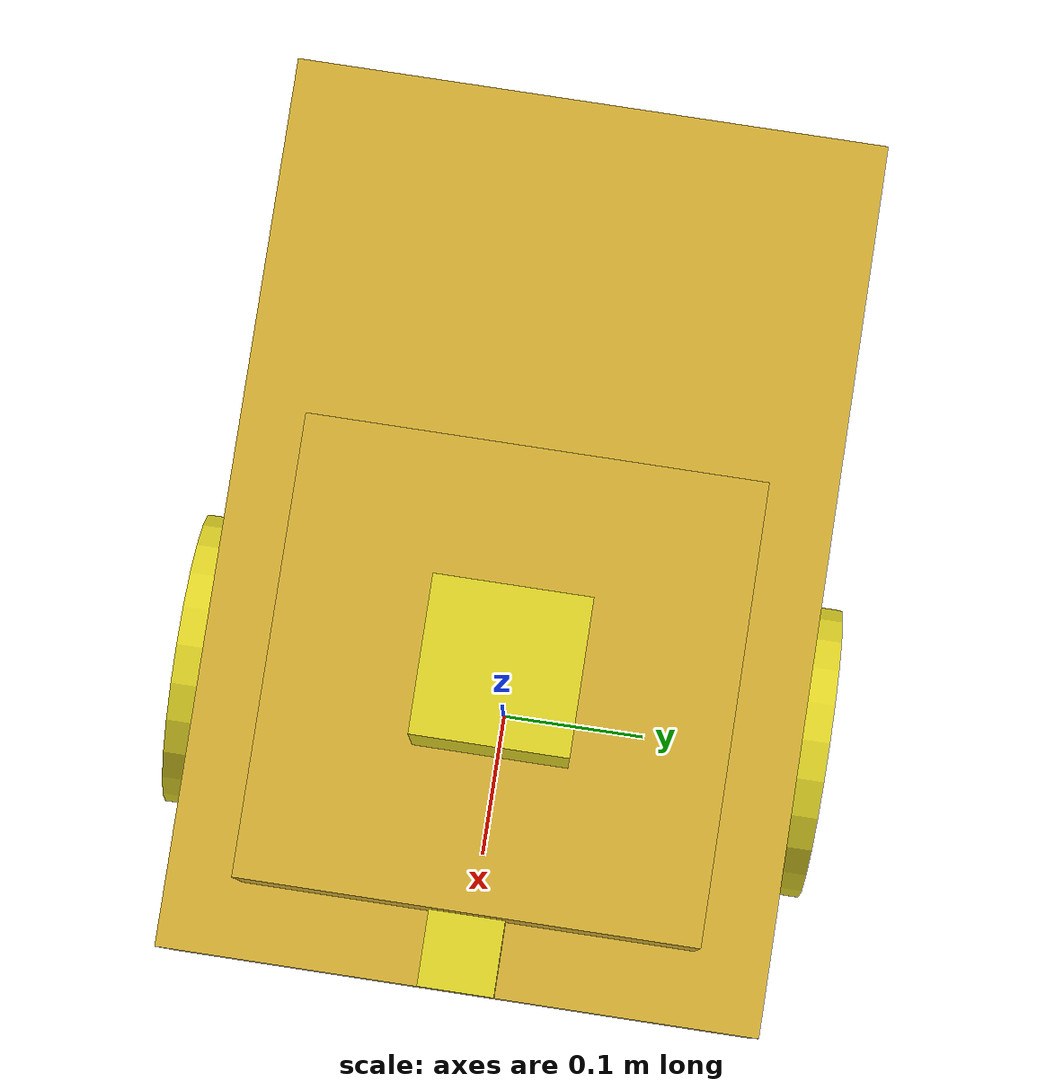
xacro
<?xml version="1.0"?>
<robot name="diffbot" xmlns:xacro="http://www.ros.org/wiki/xacro">
    <xacro:include filename="$(find diffbot_description)/urdf/properties.xacro"/>
    <xacro:include filename="$(find diffbot_description)/urdf/chassis.xacro"/>
    <xacro:include filename="$(find diffbot_description)/urdf/wheel.xacro"/>

    <xacro:chassis/>

    <xacro:wheel
        name="left"
        translation="0 ${WHEEL_SEPARATION/2} 0"
        rotation="0 0 0"
        parent="base_link"/>

    <xacro:wheel
        name="right"
        translation="0 ${-WHEEL_SEPARATION/2} 0"
        rotation="0 0 0"
        parent="base_link"/>

    <gazebo>
        <plugin name="differential_drive_controller" filename="libgazebo_ros_diff_drive.so">

            <!-- Plugin update rate in Hz -->
            <updateRate>100</updateRate>

            <!-- Name of left joint, defaults to `left_joint` -->
            <leftJoint>left_wheel_joint</leftJoint>

            <!-- Name of right joint, defaults to `right_joint` -->
            <rightJoint>right_wheel_joint</rightJoint>

            <!-- The distance from the center of one wheel to the other, in meters, defaults to 0.34 m -->
            <wheelSeparation>${WHEEL_SEPARATION}</wheelSeparation>

            <!-- Diameter of the wheels, in meters, defaults to 0.15 m -->
            <wheelDiameter>${WHEEL_RADIUS*2}</wheelDiameter>

            <!-- Wheel acceleration, in rad/s^2, defaults to 0.0 rad/s^2 -->
            <wheelAcceleration>1.0</wheelAcceleration>

            <!-- Maximum torque which the wheels can produce, in Nm, defaults to 5 Nm -->
            <wheelTorque>20</wheelTorque>

            <!-- Topic to receive geometry_msgs/Twist message commands, defaults to `cmd_vel` -->
            <commandTopic>cmd_vel</commandTopic>

            <!-- Topic to publish nav_msgs/Odometry messages, defaults to `odom` -->
            <odometryTopic>odom</odometryTopic>

            <!-- Odometry frame, defaults to `odom` -->
            <odometryFrame>odom</odometryFrame>

            <!-- Robot frame to calculate odometry from, defaults to `base_footprint` -->
            <robotBaseFrame>base_footprint</robotBaseFrame>

            <!-- Odometry source, 0 for ENCODER, 1 for WORLD, defaults to WORLD -->
            <odometrySource>1</odometrySource>

            <!-- Set to true to publish transforms for the wheel links, defaults to false -->
            <publishWheelTF>false</publishWheelTF>

            <!-- Set to true to publish transforms for the odometry, defaults to true -->
            <publishOdom>true</publishOdom>

            <!-- Set to true to publish sensor_msgs/JointState on /joint_states for the wheel joints, defaults to false -->
            <publishWheelJointState>false</publishWheelJointState>

            <!-- Set to true to swap right and left wheels, defaults to true -->
            <legacyMode>false</legacyMode>
        </plugin>
    </gazebo>

</robot>

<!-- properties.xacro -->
<robot name="diffbot" xmlns:xacro="http://www.ros.org/wiki/xacro">

    <xacro:property name="PI" value="3.14159265359"/>
    <xacro:property name="WHEEL_RADIUS" value="0.1"/>

    <!--Joint Properties-->
    <xacro:property name="U_MAX" value="10"/>
    <xacro:property name="V_MAX" value="20"/>
    <xacro:property name="WHEEL_JOINT_DAMP" value="0.3"/>
    <xacro:property name="WHEEL_SEPARATION" value="0.42"/>

    <!--Inertial Properties-->
    <xacro:property name="CHASSIS_COM" value="-0.1 0 -0.05"/>
    <xacro:property name="CHASSIS_M" value="3"/>
    <xacro:property name="CHASSIS_ixx" value="0.009607873"/>
    <xacro:property name="CHASSIS_ixy" value="0.00018491"/>
    <xacro:property name="CHASSIS_ixz" value="0.000352663"/>
    <xacro:property name="CHASSIS_iyy" value="0.010242986"/>
    <xacro:property name="CHASSIS_iyz" value="0.00027809"/>
    <xacro:property name="CHASSIS_izz" value="0.009654254"/>

    <xacro:property name="WHEEL_COM" value="0 0 0"/>
    <xacro:property name="WHEEL_M" value="0.21"/>
    <xacro:property name="WHEEL_ixx" value="0.00012052"/>
    <xacro:property name="WHEEL_ixy" value="0.0"/>
    <xacro:property name="WHEEL_ixz" value="0.0"/>
    <xacro:property name="WHEEL_iyy" value="0.0029397"/>
    <xacro:property name="WHEEL_iyz" value="0.0"/>
    <xacro:property name="WHEEL_izz" value="0.00012052"/>

    <!--Camera Properties-->
    <xacro:property name="camera_link" value="0.05" /> <!-- Size of square 'camera' box -->

</robot>

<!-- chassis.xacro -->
<robot name="diffbot_chassis" xmlns:xacro="http://www.ros.org/wiki/xacro">
    <xacro:include filename="$(find diffbot_description)/urdf/properties.xacro"/>
    <xacro:macro name="chassis" params="">
        <link name="base_footprint"/>

        <joint name="base_footprint_to_base_link" type="fixed">
            <parent link="base_footprint"/>
            <child link="base_link"/>
            <origin rpy="0 0 0" xyz="0 0 0.1"/>
        </joint>

        <link name="base_link">
            <inertial>
                <origin rpy="0 0 0" xyz="${CHASSIS_COM}"/>
                <mass value="${CHASSIS_M}"/>
                <inertia ixx="${CHASSIS_ixx}" ixy="${CHASSIS_ixy}" ixz="${CHASSIS_ixz}"
                    iyy="${CHASSIS_iyy}" iyz="${CHASSIS_iyz}" izz="${CHASSIS_izz}"/>
            </inertial>
            <visual>
                <origin rpy="0 0 0" xyz="-0.1 0 0.05"/>
                <geometry>
                    <box size="0.6 ${WHEEL_SEPARATION-0.02} 0.15"/>
                </geometry>
            </visual>
            <collision>
                <origin rpy="0 0 0" xyz="-0.1 0 0.05"/>
                <geometry>
                    <box size="0.6 ${WHEEL_SEPARATION-0.02} 0.15"/>
                </geometry>
            </collision>
        </link>

        <joint name="base_link_to_upper" type="fixed">
            <parent link="base_link"/>
            <child link="upper"/>
            <origin rpy="0 0 0" xyz="0 0 0.175"/>
        </joint>

        <link name="upper">
            <visual>
                <origin rpy="0 0 0" xyz="0 0 0"/>
                <geometry>
                    <box size="0.3 0.3 0.10"/>
                </geometry>
            </visual>
            <collision>
                <origin rpy="0 0 0" xyz="0 0 0"/>
                <geometry>
                    <box size="0.3 0.3 0.10"/>
                </geometry>
            </collision>
        </link>

        <joint name="base_link_to_caster" type="fixed">
            <parent link="base_link"/>
            <child link="caster"/>
            <origin rpy="0 0 0" xyz="-0.3 0 -0.05"/>
        </joint>

        <link name="caster">
            <visual>
                <origin rpy="0 0 0" xyz="0 0 0"/>
                <geometry>
                    <sphere radius="0.05"/>
                </geometry>
            </visual>
            <collision>
                <origin rpy="0 0 0" xyz="0 0 0"/>
                <geometry>
                    <sphere radius="0.05"/>
                </geometry>
            </collision>
        </link>

        <joint name="camera_joint" type="fixed">
            <axis xyz="0 1 0" />
            <origin xyz="0.175 0 0.15" rpy="0 0 0"/>
            <parent link="base_link"/>
            <child link="camera_link"/>
        </joint>

        <!-- Camera -->
        <link name="camera_link">
            <collision>
                <origin xyz="0 0 0" rpy="0 0 0"/>
                <geometry>
                    <box size="${camera_link} ${camera_link} ${camera_link}"/>
                </geometry>
            </collision>

            <visual>
                <origin xyz="0 0 0" rpy="0 0 0"/>
                <geometry>
                    <box size="${camera_link} ${camera_link} ${camera_link}"/>
                </geometry>
            </visual>

            <inertial>
                <mass value="1e-5" />
                <origin xyz="0 0 0" rpy="0 0 0"/>
                <inertia ixx="1e-6" ixy="0" ixz="0" iyy="1e-6" iyz="0" izz="1e-6" />
            </inertial>
        </link>

        <!-- camera -->
        <gazebo reference="camera_link">
            <sensor type="camera" name="camera1">
            <update_rate>30.0</update_rate>
            <camera name="head">
                <horizontal_fov>1.3962634</horizontal_fov>
                <image>
                <width>800</width>
                <height>800</height>
                <format>R8G8B8</format>
                </image>
                <clip>
                <near>0.02</near>
                <far>300</far>
                </clip>
                <noise>
                <type>gaussian</type>
                <mean>0.0</mean>
                <stddev>0.007</stddev>
                </noise>
            </camera>
            <plugin name="camera_controller" filename="libgazebo_ros_camera.so">
                <alwaysOn>true</alwaysOn>
                <updateRate>0.0</updateRate>
                <cameraName>rrbot/camera1</cameraName>
                <imageTopicName>image_raw</imageTopicName>
                <cameraInfoTopicName>camera_info</cameraInfoTopicName>
                <frameName>camera_link</frameName>
                <hackBaseline>0.07</hackBaseline>
                <distortionK1>0.0</distortionK1>
                <distortionK2>0.0</distortionK2>
                <distortionK3>0.0</distortionK3>
                <distortionT1>0.0</distortionT1>
                <distortionT2>0.0</distortionT2>
            </plugin>
            </sensor>
        </gazebo>

        <joint name="hokuyo_joint" type="fixed">
            <axis xyz="0 1 0" />
            <origin xyz="0 0 0.1" rpy="0 0 0"/>
            <parent link="upper"/>
            <child link="hokuyo_link"/>
        </joint>

        <!-- Hokuyo Laser -->
        <link name="hokuyo_link">
            <collision>
                <origin xyz="0 0 0" rpy="0 0 0"/>
                <geometry>
                    <box size="0.1 0.1 0.1"/>
                </geometry>
            </collision>

            <visual>
                <origin xyz="0 0 0" rpy="0 0 0"/>
                <geometry>
                    <box size="0.1 0.1 0.1"/>
                </geometry>
            </visual>

            <inertial>
                <mass value="1e-5" />
                <origin xyz="0 0 0" rpy="0 0 0"/>
                <inertia ixx="1e-6" ixy="0" ixz="0" iyy="1e-6" iyz="0" izz="1e-6"/>
            </inertial>
        </link>

        <!-- hokuyo -->
        <gazebo reference="hokuyo_link">
            <sensor type="ray" name="head_hokuyo_sensor">
            <pose>0 0 0 0 0 0</pose>
            <visualize>true</visualize>
            <update_rate>40</update_rate>
            <ray>
                <scan>
                <horizontal>
                    <samples>720</samples>
                    <resolution>1</resolution>
                    <min_angle>-1.570796</min_angle>
                    <max_angle>1.570796</max_angle>
                </horizontal>
                </scan>
                <range>
                <min>0.10</min>
                <max>30.0</max>
                <resolution>0.01</resolution>
                </range>
                <noise>
                <type>gaussian</type>
                <mean>0.0</mean>
                <stddev>0.01</stddev>
                </noise>
            </ray>
            <plugin name="gazebo_ros_head_hokuyo_controller" filename="libgazebo_ros_laser.so">
                <topicName>/rrbot/laser/scan</topicName>
                <frameName>hokuyo_link</frameName>
            </plugin>
            </sensor>
        </gazebo>

        <gazebo reference="base_link">
            <mu1>0</mu1>
            <mu2>0</mu2>
            <material>Gazebo/Gold</material>
        </gazebo>

        <gazebo reference="upper">
            <mu1>0</mu1>
            <mu2>0</mu2>
            <material>Gazebo/Gold</material>
        </gazebo>

        <gazebo reference="caster">
            <mu1>0</mu1>
            <mu2>0</mu2>
            <material>Gazebo/Yellow</material>
        </gazebo>

        <gazebo reference="camera_link">
            <mu1>0</mu1>
            <mu2>0</mu2>
            <material>Gazebo/Yellow</material>
        </gazebo>

        <gazebo reference="hokuyo_link">
            <mu1>0</mu1>
            <mu2>0</mu2>
            <material>Gazebo/Yellow</material>
        </gazebo>

    </xacro:macro>

</robot>

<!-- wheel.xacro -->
<robot name="wheel" xmlns:xacro="http://www.ros.org/wiki/xacro">

    <xacro:include filename="$(find diffbot_description)/urdf/properties.xacro"/>

    <xacro:macro name="wheel" params="name translation rotation parent">

        <gazebo>
            <plugin name="gazebo_ros_control" filename="libgazebo_ros_control.so">
                <robotNamespace>/diffbot</robotNamespace>
            </plugin>
        </gazebo>

        <link name="${name}_wheel">
            <inertial>
                <origin rpy="0 0 0" xyz="${WHEEL_COM}"/>
                <mass value="${WHEEL_M}"/>
                <inertia ixx="${WHEEL_ixx}" ixy="${WHEEL_ixy}" ixz="${WHEEL_ixz}"
                    iyy="${WHEEL_iyy}" iyz="${WHEEL_iyz}" izz="${WHEEL_izz}"/>
            </inertial>
            <visual>
                <origin rpy="${PI/2} 0 0" xyz="0 0 0"/>
                <geometry>
                    <cylinder radius="${WHEEL_RADIUS}" length="0.02"/>
                </geometry>
            </visual>
            <collision>
                <origin rpy="${PI/2} 0 0" xyz="0 0 0"/>
                <geometry>
                    <cylinder radius="${WHEEL_RADIUS}" length="0.02"/>
                </geometry>
            </collision>
        </link>

        <gazebo reference="${name}_wheel">
            <mu1>1.0</mu1>
            <mu2>1.0</mu2>
            <material>Gazebo/Yellow</material>
        </gazebo>
.
        <joint name="${name}_wheel_joint" type="continuous">
            <origin xyz="${translation}" rpy="${rotation}"/>
            <parent link="${parent}"/>
            <child link="${name}_wheel"/>
            <axis xyz="0 1 0"/>
            <limit effort="${U_MAX}" velocity="${V_MAX}"/>
            <dynamics damping="${WHEEL_JOINT_DAMP}"/>
        </joint>

        <transmission name="${name}_wheel_trans">
            <type>transmission_interface/SimpleTransmission</type>
            <joint name="${name}_wheel_joint">
                <hardwareInterface>hardware_interface/EffortJointInterface</hardwareInterface>
            </joint>
            <actuator name="${name}_wheel_motor">
                <hardwareInterface>hardware_interface/EffortJointInterface</hardwareInterface>
                <mechanicalReduction>1</mechanicalReduction>
            </actuator>
        </transmission>

    </xacro:macro>

</robot>
